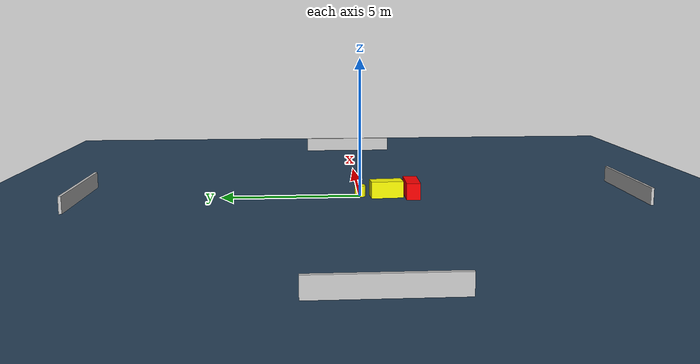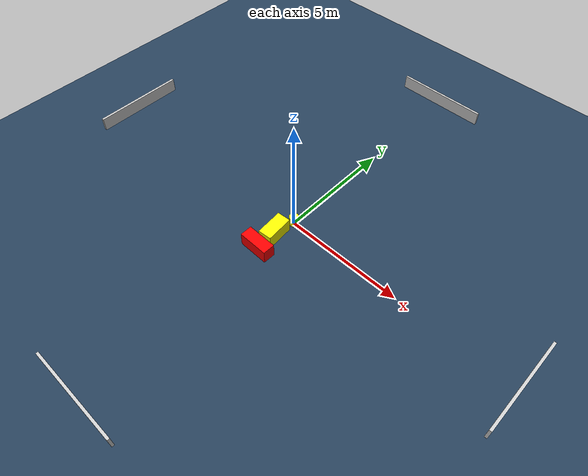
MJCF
<?xml version="1.0" ?>
<mujoco model="generated_environment">
  <option timestep="0.01" integrator="RK4" cone="elliptic"/>
  <default>
    <geom density="1"/>
  </default>
  <asset>
    <texture builtin="gradient" height="3072" name="skybox" rgb1="0.3 0.5 0.7" rgb2="0 0 0" type="skybox" width="512"/>
    <texture builtin="checker" height="300" name="groundplane" rgb1="0.2 0.3 0.4" rgb2="0.1 0.2 0.3" type="2d" width="300"/>
    <material name="groundplane" reflectance="0.2" texrepeat="5 5" texture="groundplane"/>
  </asset>
  <worldbody>
    <light dir="0 0 -1" directional="true" pos="0 0 1.5"/>
    <geom condim="3" friction="0.5 0.005 0.001" material="groundplane" name="floor" pos="0 0 0" size="0 0 0.05" type="plane"/>
    <body name="walls">
      <geom name="wall_1" condim="4" pos="-10.0 0.0 0.3" rgba="0.800000011920929 0.800000011920929 0.800000011920929 1.0" size="0.05 2.0 0.3" type="box"/>
      <geom name="wall_2" condim="4" pos="10.0 0.0 0.3" rgba="0.800000011920929 0.800000011920929 0.800000011920929 1.0" size="0.05 2.0 0.3" type="box"/>
      <geom name="wall_3" condim="4" pos="0.0 -10.0 0.3" rgba="0.800000011920929 0.800000011920929 0.800000011920929 1.0" size="2.0 0.05 0.3" type="box"/>
      <geom name="wall_4" condim="4" pos="0.0 10.0 0.3" rgba="0.800000011920929 0.800000011920929 0.800000011920929 1.0" size="2.0 0.05 0.3" type="box"/>
    </body>
    <body name="robot">
      <joint name="joint_x" type="slide" pos="0 0 0" axis="1 0 0"/>
      <joint name="joint_y" type="slide" pos="0 0 0" axis="0 1 0"/>
      <geom name="robot" type="cylinder" pos="0.0 0.0 0.2" size="0.2 0.2 0.0" mass="5.0" friction="1.0 0.005 0.0001" condim="4" rgba="1.0 1.0 0.0 1.0"/>
    </body>
    <body name="obstacle_1_movable">
      <geom name="obstacle_1_movable" condim="4" pos="-0.1378278705996288 -0.9477190099718537 0.3" euler="0 0 4.416687845956706" friction="0.0 0.005 0.001" rgba="1.0 1.0 0.0 1.0" size="0.28495590254794273 0.580171832156684 0.3" type="box" mass="0.1"/>
      <joint type="free"/>
    </body>
    <body name="obstacle_2_static">
      <geom name="obstacle_2_static" condim="4" pos="-0.12043040889026432 -1.874906104379868 0.3" euler="0 0 269.21194798461283" friction="0.0 0.005 0.001" rgba="1.0 0.0 0.0 1.0" size="0.2525349640768034 0.63057260903069 0.3" type="box"/>
    </body>
  </worldbody>
  <actuator>
    <motor name="actuator_x" joint="joint_x" gear="1" ctrlrange="-1 1"/>
    <motor name="actuator_y" joint="joint_y" gear="1" ctrlrange="-1 1"/>
  </actuator>
</mujoco>
